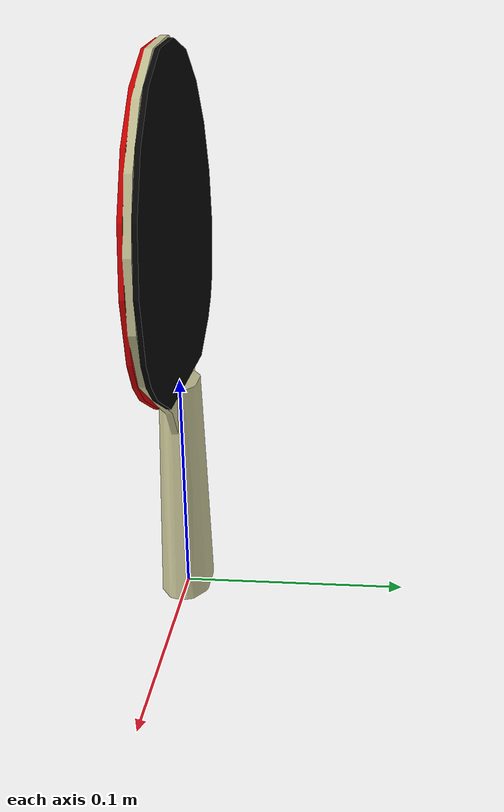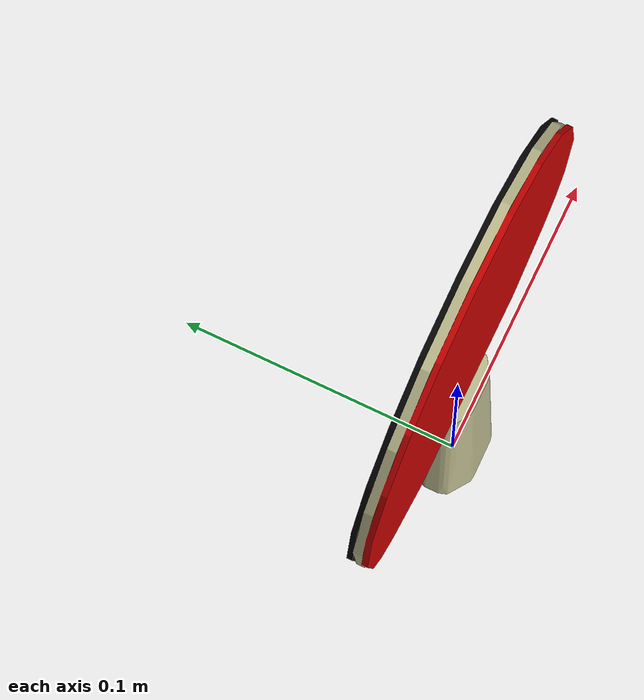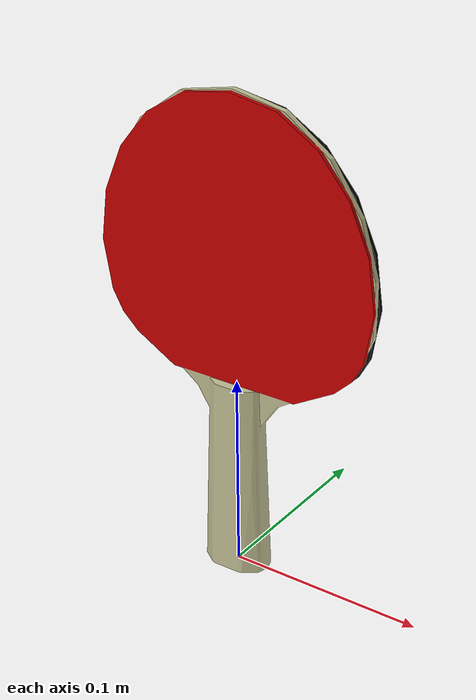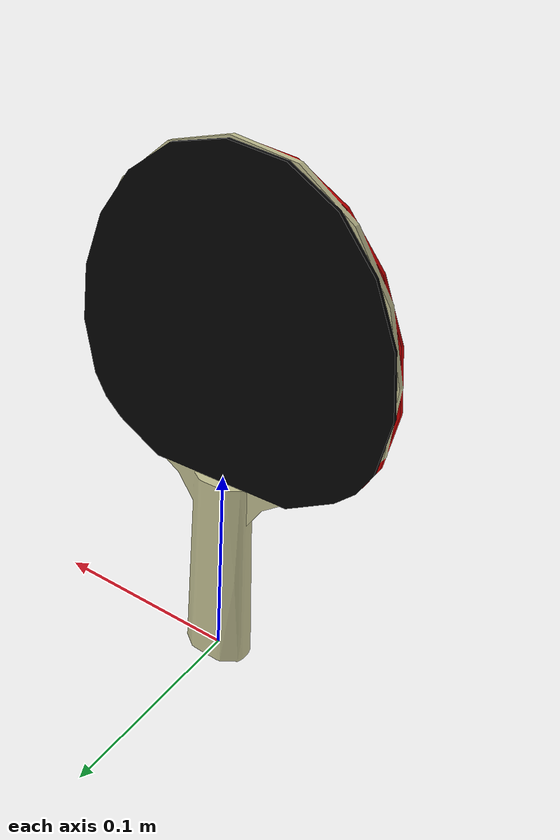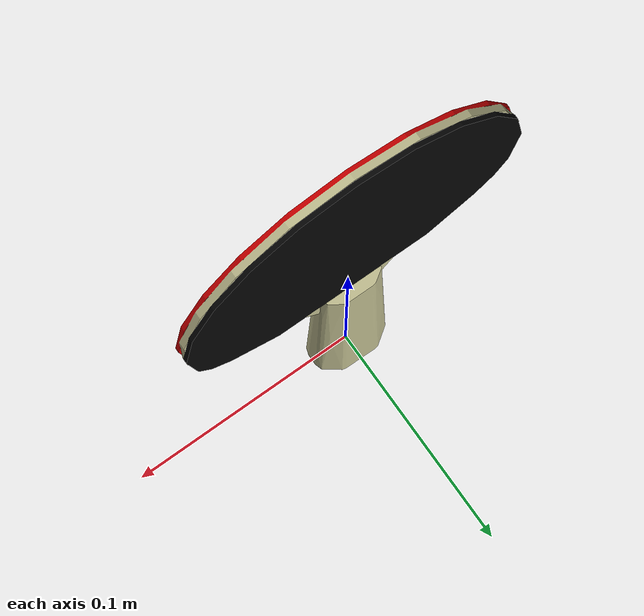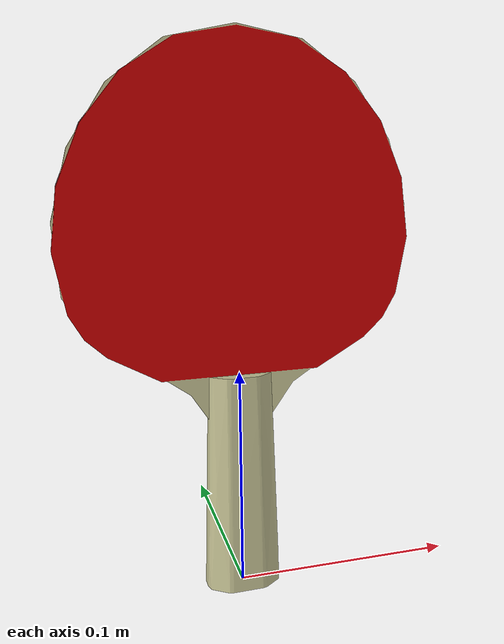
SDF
<?xml version='1.0'?>
<sdf version="1.4">
  <model name="ping_pong_racket">
    <pose>0 0 0  0 0 0</pose>
    <static>true</static>

    <link name="body">
      <visual name='visual'>
        <geometry>
          <mesh>
            <uri>model://ping_pong_racket/meshes/racket.dae</uri>
          </mesh>
        </geometry>
      </visual>

      <collision name="racket_collision">
        <pose frame=''>0 0 .17 1.5707 0 0</pose>
        <geometry>
          <cylinder>
            <radius>.07</radius>
            <length>.007</length>
          </cylinder>
        </geometry>
        <surface>
          <bounce>
            <restitution_coefficient>1</restitution_coefficient>
            <threshold>0</threshold>
          </bounce>
          <friction>
            <ode>
              <mu>0.01</mu>
              <mu2>0.01</mu2>
            </ode>
          </friction>
          <contact>
            <ode>
              <max_vel>1000</max_vel>
            </ode>
          </contact>
        </surface>
      </collision>

      <sensor name="racket_contact" type="contact">
        <contact>
          <collision>racket_collision</collision>
        </contact>
      </sensor>

    </link>

  </model>

</sdf>
